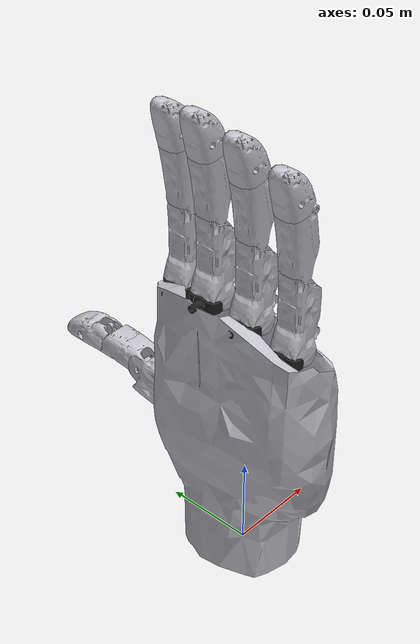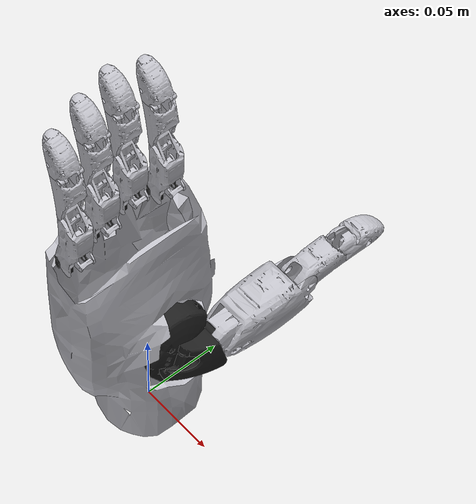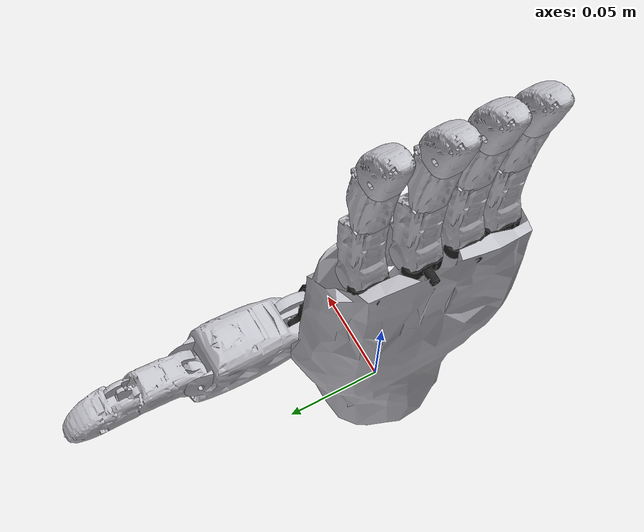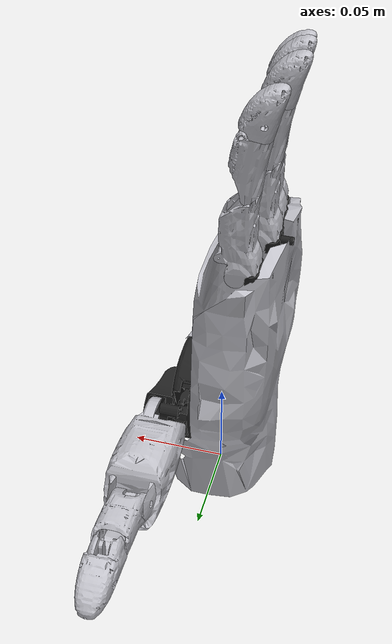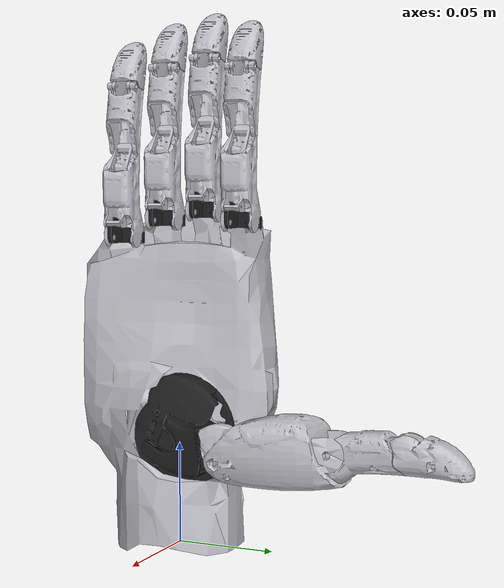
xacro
<?xml version="1.0" encoding="utf-8"?>
<robot xmlns:xacro="http://www.ros.org/wiki/xacro">
  <xacro:arg name="meshes_dir" default="package://temp_description/meshes"/>
  <link name="hand_base_link">
    <inertial>
      <origin xyz="-0.0116260966942382 -0.00274813279998326 0.0887556064299578" rpy="0 0 0"/>
      <mass value="0.119355521222427"/>
      <inertia ixx="0.000281608895823112" ixy="8.38474241472843E-07" ixz="-1.21134466138976E-05" iyy="0.00019328567036429" iyz="4.38631241419914E-07" izz="0.000103627416878272"/>
    </inertial>
    <visual>
      <origin xyz="0 0 0" rpy="0 0 0"/>
      <geometry><mesh filename="$(arg meshes_dir)/hand_base_link.STL"/></geometry>
      <material name="silver"/>
    </visual>
    <collision>
      <origin xyz="0 0 0" rpy="0 0 0"/>
      <geometry><mesh filename="$(arg meshes_dir)/collision/hand_base_link.STL"/></geometry>
    </collision>
  </link>
  <link name="pinky_metacarpals">
    <inertial>
      <origin xyz="0.0111783787153197 1.73988259632996E-08 0.00220160108534925" rpy="0 0 0"/>
      <mass value="0.000876738307234833"/>
      <inertia ixx="3.50684268310259E-08" ixy="-2.01255880662754E-13" ixz="5.24776532940736E-09" iyy="2.68810255289946E-08" iyz="-3.6732684106161E-14" izz="4.23561712818563E-08"/>
    </inertial>
    <visual>
      <origin xyz="0 0 0" rpy="0 0 0"/>
      <geometry><mesh filename="$(arg meshes_dir)/pinky_metacarpals.STL"/></geometry>
      <material name="BlackAccent"/>
    </visual>
    <collision>
      <origin xyz="0 0 0" rpy="0 0 0"/>
      <geometry><mesh filename="$(arg meshes_dir)/collision/pinky_metacarpals.STL"/></geometry>
    </collision>
  </link>
  <link name="pinky_proximal">
    <inertial>
      <origin xyz="-0.00112908280804496 -3.86673394475734E-06 0.0228400655439676" rpy="0 0 0"/>
      <mass value="0.00451758867960127"/>
      <inertia ixx="6.70005738245491E-07" ixy="1.07100998730671E-11" ixz="-2.60697889693044E-08" iyy="6.78910860635017E-07" iyz="1.619384302116E-10" izz="1.37487233622769E-07"/>
    </inertial>
    <visual>
      <origin xyz="0 0 0" rpy="0 0 0"/>
      <geometry><mesh filename="$(arg meshes_dir)/pinky_proximal.STL"/></geometry>
      <material name="silver"/>
    </visual>
    <collision>
      <origin xyz="0 0 0" rpy="0 0 0"/>
      <geometry><mesh filename="$(arg meshes_dir)/collision/pinky_proximal.STL"/></geometry>
    </collision>
  </link>
  <link name="pinky_middle">
    <inertial>
      <origin xyz="-0.000210918582412463 -2.91656475989721E-06 0.0168376013644396" rpy="0 0 0"/>
      <mass value="0.00240742140800545"/>
      <inertia ixx="2.37171034123177E-07" ixy="-2.70991764305561E-12" ixz="-1.39296056921613E-08" iyy="1.83342187871652E-07" iyz="3.74983864753835E-12" izz="9.8226350069222E-08"/>
    </inertial>
    <visual>
      <origin xyz="0 0 0" rpy="0 0 0"/>
      <geometry><mesh filename="$(arg meshes_dir)/pinky_middle.STL"/></geometry>
      <material name="silver"/>
    </visual>
    <collision>
      <origin xyz="0 0 0" rpy="0 0 0"/>
      <geometry><mesh filename="$(arg meshes_dir)/collision/pinky_middle.STL"/></geometry>
    </collision>
  </link>
  <link name="pinky_distal">
    <inertial>
      <origin xyz="-0.00807040294887727 -1.95860163051398E-05 0.00803087332396402" rpy="0 0 0"/>
      <mass value="0.00337412669848792"/>
      <inertia ixx="1.62067265373363E-07" ixy="-1.03084161797139E-10" ixz="-5.96264453601984E-08" iyy="1.79090083193527E-07" iyz="1.05530293251026E-10" izz="1.32918139665313E-07"/>
    </inertial>
    <visual>
      <origin xyz="0 0 0" rpy="0 0 0"/>
      <geometry><mesh filename="$(arg meshes_dir)/pinky_distal.STL"/></geometry>
      <material name="silver"/>
    </visual>
    <collision>
      <origin xyz="0 0 0" rpy="0 0 0"/>
      <geometry><mesh filename="$(arg meshes_dir)/collision/pinky_distal.STL"/></geometry>
    </collision>
  </link>
  <link name="ring_metacarpals">
    <inertial>
      <origin xyz="0.0111783787153197 -5.36905619352712E-07 0.0022016396219149" rpy="0 0 0"/>
      <mass value="0.000876738307234883"/>
      <inertia ixx="3.5068426831027E-08" ixy="-2.01255880718238E-13" ixz="5.24776532940712E-09" iyy="2.68810255289954E-08" iyz="-3.67326835665223E-14" izz="4.23561712818567E-08"/>
    </inertial>
    <visual>
      <origin xyz="0 0 0" rpy="0 0 0"/>
      <geometry><mesh filename="$(arg meshes_dir)/ring_metacarpals.STL"/></geometry>
      <material name="BlackAccent"/>
    </visual>
    <collision>
      <origin xyz="0 0 0" rpy="0 0 0"/>
      <geometry><mesh filename="$(arg meshes_dir)/collision/ring_metacarpals.STL"/></geometry>
    </collision>
  </link>
  <link name="ring_proximal">
    <inertial>
      <origin xyz="-0.00112908262583935 -1.70769630077061E-05 0.0228400659770985" rpy="0 0 0"/>
      <mass value="0.00451758885102983"/>
      <inertia ixx="6.70005760179099E-07" ixy="1.07124239123891E-11" ixz="-2.60697922383748E-08" iyy="6.78910876105749E-07" iyz="1.61928071276549E-10" izz="1.37487241358748E-07"/>
    </inertial>
    <visual>
      <origin xyz="0 0 0" rpy="0 0 0"/>
      <geometry><mesh filename="$(arg meshes_dir)/ring_proximal.STL"/></geometry>
      <material name="silver"/>
    </visual>
    <collision>
      <origin xyz="0 0 0" rpy="0 0 0"/>
      <geometry><mesh filename="$(arg meshes_dir)/collision/ring_proximal.STL"/></geometry>
    </collision>
  </link>
  <link name="ring_middle">
    <inertial>
      <origin xyz="-0.00021091859446306 -2.91657898018882E-06 0.0168376013345287" rpy="0 0 0"/>
      <mass value="0.00240742140052362"/>
      <inertia ixx="2.37171033138143E-07" ixy="-2.7100414951465E-12" ixz="-1.39296060459522E-08" iyy="1.83342186859774E-07" iyz="3.74956284923257E-12" izz="9.82263498201999E-08"/>
    </inertial>
    <visual>
      <origin xyz="0 0 0" rpy="0 0 0"/>
      <geometry><mesh filename="$(arg meshes_dir)/ring_middle.STL"/></geometry>
      <material name="silver"/>
    </visual>
    <collision>
      <origin xyz="0 0 0" rpy="0 0 0"/>
      <geometry><mesh filename="$(arg meshes_dir)/collision/ring_middle.STL"/></geometry>
    </collision>
  </link>
  <link name="ring_distal">
    <inertial>
      <origin xyz="-0.00807040294866931 -1.9586017669021E-05 0.00803087256062983" rpy="0 0 0"/>
      <mass value="0.0033741266986076"/>
      <inertia ixx="1.6206726538022E-07" ixy="-1.03084186529573E-10" ixz="-5.96264453639804E-08" iyy="1.79090083161836E-07" iyz="1.05530278574068E-10" izz="1.32918139683415E-07"/>
    </inertial>
    <visual>
      <origin xyz="0 0 0" rpy="0 0 0"/>
      <geometry><mesh filename="$(arg meshes_dir)/ring_distal.STL"/></geometry>
      <material name="silver"/>
    </visual>
    <collision>
      <origin xyz="0 0 0" rpy="0 0 0"/>
      <geometry><mesh filename="$(arg meshes_dir)/collision/ring_distal.STL"/></geometry>
    </collision>
  </link>
  <link name="middle_metacarpals">
    <inertial>
      <origin xyz="0.0111783787153198 -5.36905619463734E-07 0.00220163962191467" rpy="0 0 0"/>
      <mass value="0.000876738307234834"/>
      <inertia ixx="3.50684268310259E-08" ixy="-2.0125588061605E-13" ixz="5.24776532940725E-09" iyy="2.68810255289945E-08" iyz="-3.67326839308491E-14" izz="4.23561712818563E-08"/>
    </inertial>
    <visual>
      <origin xyz="0 0 0" rpy="0 0 0"/>
      <geometry><mesh filename="$(arg meshes_dir)/middle_metacarpals.STL"/></geometry>
      <material name="BlackAccent"/>
    </visual>
    <collision>
      <origin xyz="0 0 0" rpy="0 0 0"/>
      <geometry><mesh filename="$(arg meshes_dir)/collision/middle_metacarpals.STL"/></geometry>
    </collision>
  </link>
  <link name="middle_proximal">
    <inertial>
      <origin xyz="-0.00112908264667504 -1.70765644096349E-05 0.0228400658126111" rpy="0 0 0"/>
      <mass value="0.00451758879836063"/>
      <inertia ixx="6.70005750213689E-07" ixy="1.0709683946819E-11" ixz="-2.60697892463952E-08" iyy="6.7891086764891E-07" iyz="1.61944386240367E-10" izz="1.37487237816443E-07"/>
    </inertial>
    <visual>
      <origin xyz="0 0 0" rpy="0 0 0"/>
      <geometry><mesh filename="$(arg meshes_dir)/middle_proximal.STL"/></geometry>
      <material name="silver"/>
    </visual>
    <collision>
      <origin xyz="0 0 0" rpy="0 0 0"/>
      <geometry><mesh filename="$(arg meshes_dir)/collision/middle_proximal.STL"/></geometry>
    </collision>
  </link>
  <link name="middle_middle">
    <inertial>
      <origin xyz="-0.000210918582531389 -2.91656481549163E-06 0.0168376013611927" rpy="0 0 0"/>
      <mass value="0.00240742140799016"/>
      <inertia ixx="2.3717103371746E-07" ixy="-2.70991790215455E-12" ixz="-1.39296056849284E-08" iyy="1.83342187462169E-07" iyz="3.74983812024697E-12" izz="9.82263500660551E-08"/>
    </inertial>
    <visual>
      <origin xyz="0 0 0" rpy="0 0 0"/>
      <geometry><mesh filename="$(arg meshes_dir)/middle_middle.STL"/></geometry>
      <material name="silver"/>
    </visual>
    <collision>
      <origin xyz="0 0 0" rpy="0 0 0"/>
      <geometry><mesh filename="$(arg meshes_dir)/collision/middle_middle.STL"/></geometry>
    </collision>
  </link>
  <link name="middle_distal">
    <inertial>
      <origin xyz="-0.00807040294827011 -1.95860161913697E-05 0.00803087332606282" rpy="0 0 0"/>
      <mass value="0.00337412669879527"/>
      <inertia ixx="1.62067265406276E-07" ixy="-1.03084160292156E-10" ixz="-5.96264453651413E-08" iyy="1.79090083197241E-07" iyz="1.05530287328658E-10" izz="1.32918139683668E-07"/>
    </inertial>
    <visual>
      <origin xyz="0 0 0" rpy="0 0 0"/>
      <geometry><mesh filename="$(arg meshes_dir)/middle_distal.STL"/></geometry>
      <material name="silver"/>
    </visual>
    <collision>
      <origin xyz="0 0 0" rpy="0 0 0"/>
      <geometry><mesh filename="$(arg meshes_dir)/collision/middle_distal.STL"/></geometry>
    </collision>
  </link>
  <link name="index_metacarpals">
    <inertial>
      <origin xyz="0.0111783787153197 -5.36905619408223E-07 0.0022016396219149" rpy="0 0 0"/>
      <mass value="0.000876738307234888"/>
      <inertia ixx="3.50684268310272E-08" ixy="-2.01255880639633E-13" ixz="5.24776532940715E-09" iyy="2.68810255289955E-08" iyz="-3.67326838815665E-14" izz="4.23561712818569E-08"/>
    </inertial>
    <visual>
      <origin xyz="0 0 0" rpy="0 0 0"/>
      <geometry><mesh filename="$(arg meshes_dir)/index_metacarpals.STL"/></geometry>
      <material name="BlackAccent"/>
    </visual>
    <collision>
      <origin xyz="0 0 0" rpy="0 0 0"/>
      <geometry><mesh filename="$(arg meshes_dir)/collision/index_metacarpals.STL"/></geometry>
    </collision>
  </link>
  <link name="index_proximal">
    <inertial>
      <origin xyz="-0.00112908264491655 -3.86657489762077E-06 0.0228400658147424" rpy="0 0 0"/>
      <mass value="0.00451758879934099"/>
      <inertia ixx="6.70005750303174E-07" ixy="1.07096827382529E-11" ixz="-2.60697892451836E-08" iyy="6.78910867706126E-07" iyz="1.61944343361799E-10" izz="1.37487237848926E-07"/>
    </inertial>
    <visual>
      <origin xyz="0 0 0" rpy="0 0 0"/>
      <geometry><mesh filename="$(arg meshes_dir)/index_proximal.STL"/></geometry>
      <material name="silver"/>
    </visual>
    <collision>
      <origin xyz="0 0 0" rpy="0 0 0"/>
      <geometry><mesh filename="$(arg meshes_dir)/collision/index_proximal.STL"/></geometry>
    </collision>
  </link>
  <link name="index_middle">
    <inertial>
      <origin xyz="-0.000210918632589208 -2.91655816400671E-06 0.0168376013550637" rpy="0 0 0"/>
      <mass value="0.00240742140798158"/>
      <inertia ixx="2.37171033813523E-07" ixy="-2.70992594914544E-12" ixz="-1.3929605674102E-08" iyy="1.83342187562481E-07" iyz="3.74988422279869E-12" izz="9.82263500700157E-08"/>
    </inertial>
    <visual>
      <origin xyz="0 0 0" rpy="0 0 0"/>
      <geometry><mesh filename="$(arg meshes_dir)/index_middle.STL"/></geometry>
      <material name="silver"/>
    </visual>
    <collision>
      <origin xyz="0 0 0" rpy="0 0 0"/>
      <geometry><mesh filename="$(arg meshes_dir)/collision/index_middle.STL"/></geometry>
    </collision>
  </link>
  <link name="index_distal">
    <inertial>
      <origin xyz="-0.00807040294819541 -1.95860155396688E-05 0.00803087332614133" rpy="0 0 0"/>
      <mass value="0.0033741266988187"/>
      <inertia ixx="1.62067265427891E-07" ixy="-1.030841487474E-10" ixz="-5.96264453690637E-08" iyy="1.79090083185726E-07" iyz="1.05530285191432E-10" izz="1.32918139694536E-07"/>
    </inertial>
    <visual>
      <origin xyz="0 0 0" rpy="0 0 0"/>
      <geometry><mesh filename="$(arg meshes_dir)/index_distal.STL"/></geometry>
      <material name="silver"/>
    </visual>
    <collision>
      <origin xyz="0 0 0" rpy="0 0 0"/>
      <geometry><mesh filename="$(arg meshes_dir)/collision/index_distal.STL"/></geometry>
    </collision>
  </link>
  <link name="thumb_metacarpals_base1">
    <inertial>
      <origin xyz="0.00225106540143255 0.0106280781314811 0.00386496887062775" rpy="0 0 0"/>
      <mass value="0.0123197273270212"/>
      <inertia ixx="3.08398596758481E-06" ixy="-7.90434968870597E-08" ixz="4.99257949343636E-08" iyy="4.73419522678173E-06" iyz="-1.89397292598919E-07" izz="2.03268500392085E-06"/>
    </inertial>
    <visual>
      <origin xyz="0 0 0" rpy="0 0 0"/>
      <geometry><mesh filename="$(arg meshes_dir)/thumb_metacarpals_base1.STL"/></geometry>
      <material name="BlackAccent"/>
    </visual>
    <collision>
      <origin xyz="0 0 0" rpy="0 0 0"/>
      <geometry><mesh filename="$(arg meshes_dir)/collision/thumb_metacarpals_base1.STL"/></geometry>
    </collision>
  </link>
  <link name="thumb_metacarpals_base2">
    <inertial>
      <origin xyz="0.00119794122046318 0.00176288166433086 0.00980405746394286" rpy="0 0 0"/>
      <mass value="0.00459776097124383"/>
      <inertia ixx="7.31648689063878E-07" ixy="-4.16925980705595E-08" ixz="7.27793121012466E-08" iyy="5.38489639105841E-07" iyz="-1.05409912056041E-07" izz="3.72559163410338E-07"/>
    </inertial>
    <visual>
      <origin xyz="0 0 0" rpy="0 0 0"/>
      <geometry><mesh filename="$(arg meshes_dir)/thumb_metacarpals_base2.STL"/></geometry>
      <material name="BlackAccent"/>
    </visual>
    <collision>
      <origin xyz="0 0 0" rpy="0 0 0"/>
      <geometry><mesh filename="$(arg meshes_dir)/collision/thumb_metacarpals_base2.STL"/></geometry>
    </collision>
  </link>
  <link name="thumb_metacarpals">
    <inertial>
      <origin xyz="0.00549384865796482 0.00805524685758721 0.0258290762784949" rpy="0 0 0"/>
      <mass value="0.0119728760675928"/>
      <inertia ixx="4.12796153480032E-06" ixy="2.08264516047914E-08" ixz="1.78085589076533E-08" iyy="4.82110081302191E-06" iyz="6.19419770800233E-08" izz="1.21324079339986E-06"/>
    </inertial>
    <visual>
      <origin xyz="0 0 0" rpy="0 0 0"/>
      <geometry><mesh filename="$(arg meshes_dir)/thumb_metacarpals.STL"/></geometry>
      <material name="silver"/>
    </visual>
    <collision>
      <origin xyz="0 0 0" rpy="0 0 0"/>
      <geometry><mesh filename="$(arg meshes_dir)/collision/thumb_metacarpals.STL"/></geometry>
    </collision>
  </link>
  <link name="thumb_proximal">
    <inertial>
      <origin xyz="-0.0011057174593414 0.000334119020688653 0.0128607021591473" rpy="0 0 0"/>
      <mass value="0.00515940162015082"/>
      <inertia ixx="4.56371524641978E-07" ixy="1.15255552260169E-09" ixz="8.11361744697202E-08" iyy="6.16289154720601E-07" iyz="5.36536229784869E-09" izz="2.4689422432426E-07"/>
    </inertial>
    <visual>
      <origin xyz="0 0 0" rpy="0 0 0"/>
      <geometry><mesh filename="$(arg meshes_dir)/thumb_proximal.STL"/></geometry>
      <material name="silver"/>
    </visual>
    <collision>
      <origin xyz="0 0 0" rpy="0 0 0"/>
      <geometry><mesh filename="$(arg meshes_dir)/collision/thumb_proximal.STL"/></geometry>
    </collision>
  </link>
  <link name="thumb_distal">
    <inertial>
      <origin xyz="-0.00636210776657178 4.14651450399844E-05 0.0118150620527104" rpy="0 0 0"/>
      <mass value="0.00614449456083594"/>
      <inertia ixx="3.71418540379979E-07" ixy="2.36548498459678E-10" ixz="-9.49666673834207E-08" iyy="4.48768445500361E-07" iyz="-9.82614466952934E-10" izz="1.66160918259876E-07"/>
    </inertial>
    <visual>
      <origin xyz="0 0 0" rpy="0 0 0"/>
      <geometry><mesh filename="$(arg meshes_dir)/thumb_distal.STL"/></geometry>
      <material name="silver"/>
    </visual>
    <collision>
      <origin xyz="0 0 0" rpy="0 0 0"/>
      <geometry><mesh filename="$(arg meshes_dir)/collision/thumb_distal.STL"/></geometry>
    </collision>
  </link>

  <joint name="pinky_mcp_roll" type="revolute">
    <origin xyz="-0.028576 -0.038102 0.15031" rpy="0 0 0"/>
    <parent link="hand_base_link"/><child link="pinky_metacarpals"/>
    <axis xyz="1 0 0"/>
    <limit lower="-0.17" upper="0.17" effort="1" velocity="1"/>
  </joint>
  <joint name="pinky_mcp_pitch" type="revolute">
    <origin xyz="0.016675 0 0" rpy="0 0 0"/>
    <parent link="pinky_metacarpals"/><child link="pinky_proximal"/>
    <axis xyz="0 1 0"/>
    <limit lower="0" upper="1.4" effort="1" velocity="1"/>
  </joint>
  <joint name="pinky_pip" type="revolute">
    <origin xyz="-0.00419455244191127 1.32099958100595E-05 0.0448194355633776" rpy="0 0 0"/>
    <parent link="pinky_proximal"/><child link="pinky_middle"/>
    <axis xyz="0 1 0"/>
    <limit lower="0" upper="1.57" effort="1" velocity="1"/>
  </joint>
  <joint name="pinky_dip" type="revolute">
    <origin xyz="0.0027556 0 0.031702" rpy="0 0 0"/>
    <parent link="pinky_middle"/><child link="pinky_distal"/>
    <axis xyz="0 1 0"/>
    <limit lower="0" upper="1.4" effort="1" velocity="1"/>
  </joint>
  <joint name="ring_mcp_roll" type="revolute">
    <origin xyz="-0.032199 -0.016502 0.15931" rpy="0 0 0"/>
    <parent link="hand_base_link"/><child link="ring_metacarpals"/>
    <axis xyz="1 0 0"/>
    <limit lower="-0.17" upper="0.17" effort="1" velocity="1"/>
  </joint>
  <joint name="ring_mcp_pitch" type="revolute">
    <origin xyz="0.016675 1.2656E-05 0" rpy="0 0 0"/>
    <parent link="ring_metacarpals"/><child link="ring_proximal"/>
    <axis xyz="0 1 0"/>
    <limit lower="0" upper="1.4" effort="1" velocity="1"/>
  </joint>
  <joint name="ring_pip" type="revolute">
    <origin xyz="-0.00419455244174995 0 0.0448194355645609" rpy="0 0 0"/>
    <parent link="ring_proximal"/><child link="ring_middle"/>
    <axis xyz="0 1 0"/>
    <limit lower="0" upper="1.57" effort="1" velocity="1"/>
  </joint>
  <joint name="ring_dip" type="revolute">
    <origin xyz="0.00275561956405355 0 0.0317024252327154" rpy="0 0 0"/>
    <parent link="ring_middle"/><child link="ring_distal"/>
    <axis xyz="0 1 0"/>
    <limit lower="0" upper="1.4" effort="1" velocity="1"/>
  </joint>
  <joint name="middle_mcp_roll" type="revolute">
    <origin xyz="-0.0345042006792679 0.00509811417717426 0.163804307612682" rpy="0 0 0"/>
    <parent link="hand_base_link"/><child link="middle_metacarpals"/>
    <axis xyz="0.999999999998204 0 0"/>
    <limit lower="-0.17" upper="0.17" effort="1" velocity="1"/>
  </joint>
  <joint name="middle_mcp_pitch" type="revolute">
    <origin xyz="0.0166748095398548 1.26556862705962E-05 0" rpy="0 0 0"/>
    <parent link="middle_metacarpals"/><child link="middle_proximal"/>
    <axis xyz="0 1 0"/>
    <limit lower="0" upper="1.4" effort="1" velocity="1"/>
  </joint>
  <joint name="middle_pip" type="revolute">
    <origin xyz="-0.00419455244189623 0 0.0448194355665477" rpy="0 0 0"/>
    <parent link="middle_proximal"/><child link="middle_middle"/>
    <axis xyz="0 1 0"/>
    <limit lower="0" upper="1.57" effort="1" velocity="1"/>
  </joint>
  <joint name="middle_dip" type="revolute">
    <origin xyz="0.00275561956368908 0 0.031702425228504" rpy="0 0 0"/>
    <parent link="middle_middle"/><child link="middle_distal"/>
    <axis xyz="0 1 0"/>
    <limit lower="0" upper="1.4" effort="1" velocity="1"/>
  </joint>
  <joint name="index_mcp_roll" type="revolute">
    <origin xyz="-0.0297703583048348 0.026698113515616 0.159311418025823" rpy="0 0 0"/>
    <parent link="hand_base_link"/><child link="index_metacarpals"/>
    <axis xyz="0.999999999998204 0 0"/>
    <limit lower="-0.17" upper="0.17" effort="1" velocity="1"/>
  </joint>
  <joint name="index_mcp_pitch" type="revolute">
    <origin xyz="0.0166748095646496 0 0" rpy="0 0 0"/>
    <parent link="index_metacarpals"/><child link="index_proximal"/>
    <axis xyz="0 1 0"/>
    <limit lower="0" upper="1.4" effort="1" velocity="1"/>
  </joint>
  <joint name="index_pip" type="revolute">
    <origin xyz="-0.00419455239160021 1.32099983796707E-05 0.0448194355727413" rpy="0 0 0"/>
    <parent link="index_proximal"/><child link="index_middle"/>
    <axis xyz="0 1 0"/>
    <limit lower="0" upper="1.57" effort="1" velocity="1"/>
  </joint>
  <joint name="index_dip" type="revolute">
    <origin xyz="0.00275561951363186 0 0.0317024252223218" rpy="0 0 0"/>
    <parent link="index_middle"/><child link="index_distal"/>
    <axis xyz="0 1 0"/>
    <limit lower="0" upper="1.4" effort="1" velocity="1"/>
  </joint>
  <joint name="thumb_cmc_yaw" type="revolute">
    <origin xyz="0.0039847 0.0050818 0.057392" rpy="3.1416 0 1.5708"/>
    <parent link="hand_base_link"/><child link="thumb_metacarpals_base1"/>
    <axis xyz="0 1 0"/>
    <limit lower="0" upper="1.4" effort="1" velocity="1"/>
  </joint>
  <joint name="thumb_cmc_roll" type="revolute">
    <origin xyz="0.000784740002368223 0.0196077603627024 0.000308721957079858" rpy="1.18264333118745 0 1.57079632679503"/>
    <parent link="thumb_metacarpals_base1"/><child link="thumb_metacarpals_base2"/>
    <axis xyz="0 1 0"/>
    <limit lower="0" upper="1.22" effort="1" velocity="1"/>
  </joint>
  <joint name="thumb_cmc_pitch" type="revolute">
    <origin xyz="-0.000109690908352875 -0.00396440679180957 0.0307945044045898" rpy="0 0.388152995607441 -1.57079632624948"/>
    <parent link="thumb_metacarpals_base2"/><child link="thumb_metacarpals"/>
    <axis xyz="0 1 0"/>
    <limit lower="0" upper="0.79" effort="1" velocity="1"/>
  </joint>
  <joint name="thumb_mcp" type="revolute">
    <origin xyz="0.00857856380171737 0 0.0555715948082196" rpy="0 0 0"/>
    <parent link="thumb_metacarpals"/><child link="thumb_proximal"/>
    <axis xyz="0 1 0"/>
    <limit lower="0" upper="1.05" effort="1" velocity="1"/>
  </joint>
  <joint name="thumb_dip" type="revolute">
    <origin xyz="0.0066653832125308 0 0.0342561774516276" rpy="0 0 0"/>
    <parent link="thumb_proximal"/><child link="thumb_distal"/>
    <axis xyz="0 1 0"/>
    <limit lower="0" upper="1.22" effort="1" velocity="1"/>
  </joint>
</robot>
